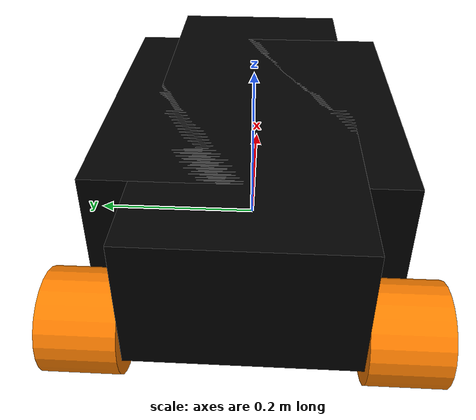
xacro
<?xml version="1.0"?>
<robot xmlns:xacro="http://www.ros.org/wiki/xacro" >

    <xacro:include filename="inertial_macros.xacro" />

    <!--! MATERIALS !-->
    <material name="black">
        <color rgba="0 0 0 1" />
    </material>

    <material name="white">
        <color rgba="1 1 1 1" />
    </material>

    <material name="red">
        <color rgba="1 0 0 1" />
    </material>

    <material name="orange">
        <color rgba="1 0.5 0 1" />
    </material>

    <material name="blue">
        <color rgba="0 0 1 1" />
    </material>

    <!--! BASE LINK -->

    <link name="base_link">

    </link>

    <!--! BASE_FOOTPRINT LINK -->

    <link name="base_footprint">
    </link>

    <joint name="base_footprint_to_base_link" type="fixed">
        <parent link="base_footprint"/>
        <child link="base_link"/>
        <origin xyz="0 0 0" rpy="0 0 0"/>
    </joint>

    <!--! CHASSI !-->
    <!--? LINK ?-->
    <link name="chassi" type="fixed">
        <visual>
            <geometry>
                <box size="0.545 0.225 0.140" />
            </geometry>
            <material name="black" />
        </visual>
        <visual>
            <geometry>
                <box size="0.36 0.325 0.140" />
            </geometry>
            <material name="black" />
        </visual>
        <collision>
            <geometry>
                <box size="0.545 0.225 0.140" />
            </geometry>
        </collision>
        <xacro:inertial_box mass="1.0" x="0.545" y="0.225" z="0.140">
            <origin xyz="0 0 0" />
        </xacro:inertial_box>
    </link>

    <!--? JOINT ?-->
    <joint name="base_chassi_joint" type="fixed">
        <parent link="base_link" />
        <child link="chassi" />
        <origin xyz="0 0 0.1" rpy="0 0 0" />
    </joint>

    <gazebo reference="chassi">
        <material>Gazebo/Black</material>
    </gazebo>

    <!--! FRONT LEFT WHEELS !-->
    <!--? LINK ?-->
    <link name="front_left_wheel">
        <visual>
            <geometry>
                <cylinder radius="0.05" length="0.075" />
            </geometry>
            <material name="orange" />
        </visual>
        <collision>
            <geometry>
                <sphere>
                    <radius>0.05</radius>
                </sphere>
            </geometry>
        </collision>
        <xacro:inertial_cylinder mass="0.1" length="0.075" radius="0.05" >
            <origin xyz="0 0 0" />
        </xacro:inertial_cylinder>
    </link>

    <!--? JOINT ?-->
    <joint name="base_fl_wheel_joint" type="continuous">
        <parent link="chassi" />
        <child link="front_left_wheel" />
        <origin xyz="0.237 0.150 -0.055" rpy="-${pi/2} 0 0" />
        <axis xyz="0 0 1" />
    </joint>

    <gazebo reference="front_left_wheel">
        <material>Gazebo\White</material>
    </gazebo>

    <!--! FRONT RIGHT WHEELS !-->
    <!--? LINK ?-->
    <link name="front_right_wheel">
        <visual>
            <geometry>
                <cylinder radius="0.05" length="0.075" />
            </geometry>
            <material name="orange" />
        </visual>
        <collision>
            <geometry>
                <sphere>
                    <radius>0.05</radius>
                </sphere>
            </geometry>
        </collision>
        <xacro:inertial_cylinder mass="0.1" length="0.075" radius="0.05">
            <origin xyz="0 0 0" />
        </xacro:inertial_cylinder>
    </link>

    <!--? JOINT ?-->
    <joint name="base_fr_wheel_joint" type="continuous">
        <parent link="chassi" />
        <child link="front_right_wheel" />
        <origin xyz="0.237 -0.150 -0.055" rpy="-${pi/2} 0 0" />
        <axis xyz="0 0 1" />
    </joint>

    <gazebo reference="front_right_wheel">
        <material>Gazebo\White</material>
    </gazebo>

    <!--! REAR LEFT WHEELS !-->
    <!--? LINK ?-->
    <link name="rear_left_wheel">
        <visual>
            <geometry>
                <cylinder radius="0.05" length="0.075" />
            </geometry>
            <material name="orange" />
        </visual>
        <collision>
            <geometry>
                <sphere>
                    <radius>0.05</radius>
                </sphere>
            </geometry>
        </collision>
        <xacro:inertial_cylinder mass="0.1" length="0.075" radius="0.05">
            <origin xyz="0 0 0" />
        </xacro:inertial_cylinder>
    </link>

    <!--? JOINT ?-->
    <joint name="base_rl_wheel_joint" type="continuous">
        <parent link="chassi" />
        <child link="rear_left_wheel" />
        <origin xyz="-0.237 0.150 -0.055" rpy="-${pi/2} 0 0" />
        <axis xyz="0 0 1" />
    </joint>

    <gazebo reference="rear_left_wheel">
        <material>Gazebo\White</material>
    </gazebo>

    <!--! REAR RIGHT WHEELS !-->
    <!--? LINK ?-->
    <link name="rear_right_wheel">
        <visual>
            <geometry>
                <cylinder radius="0.05" length="0.075" />
            </geometry>
            <material name="orange" />
        </visual>
        <collision>
            <geometry>
                <sphere>
                    <radius>0.05</radius>
                </sphere>
            </geometry>
        </collision>
        <xacro:inertial_cylinder mass="0.1" length="0.075" radius="0.05">
            <origin xyz="0 0 0" />
        </xacro:inertial_cylinder>
    </link>

    <!--? JOINT ?-->
    <joint name="base_rr_wheel_joint" type="continuous">
        <parent link="chassi" />
        <child link="rear_right_wheel" />
        <origin xyz="-0.237 -0.150 -0.055" rpy="-${pi/2} 0 0" />
        <axis xyz="0 0 1" />
    </joint>

    <gazebo reference="rear_right_wheel">
        <material>Gazebo/White</material>
    </gazebo>

</robot>
